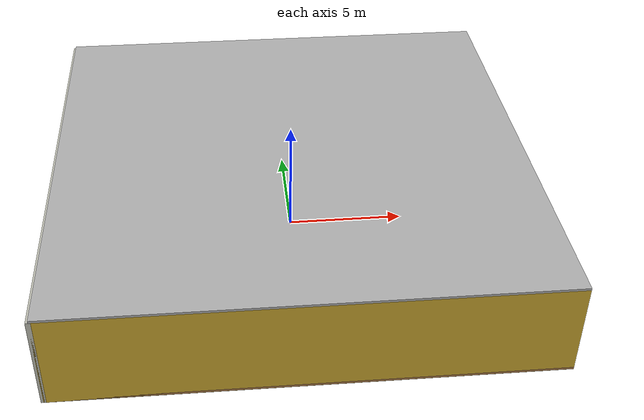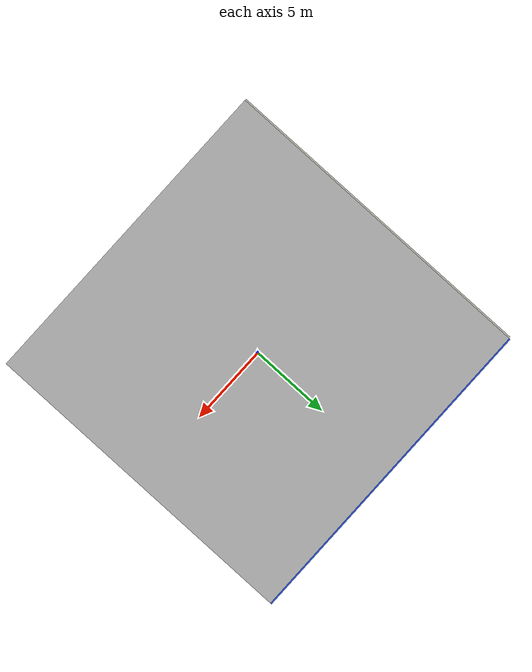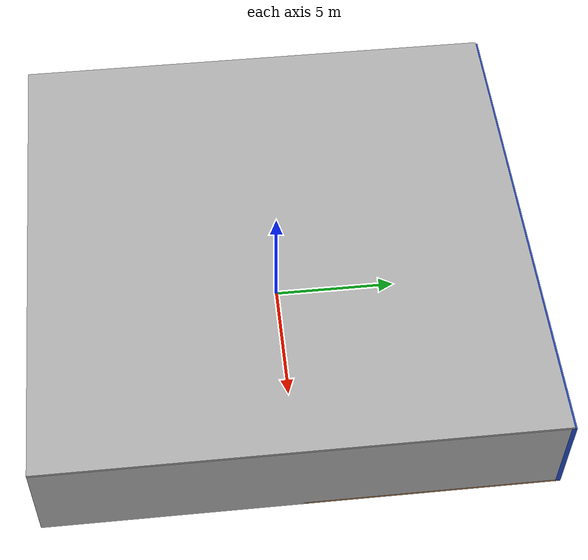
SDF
<sdf version="1.4">
 <world name="default">
  <physics type="ode">
   <max_step_size>0.001</max_step_size>
   <real_time_factor>1</real_time_factor>
   <real_time_update_rate>1000</real_time_update_rate>
   <gravity>0 0 -9.8</gravity>
  </physics>
  <scene><ambient>0.4 0.4 0.4 1</ambient><background>0.7 0.7 0.7 1</background><shadows>1</shadows></scene>
  <model name="Surrounding">
   <static>1</static>
   <link name="Ceiling">
    <collision name="Ceiling_Collision"><geometry><box><size>20 20 0.1</size></box></geometry></collision>
    <visual name="Ceiling_Visual">
     <geometry><box><size>20 20 0.1</size></box></geometry>
     <material>
      <script><uri>file://media/materials/scripts/gazebo.material</uri><name>Gazebo/Pioneer2Body</name></script>
     </material>
    </visual>
    <pose>0 0 4.05 0 0 0</pose>
   </link>
   <link name="Wall_South">
    <collision name="Wall_South_Collision">
     <geometry><box><size>20 0 4</size></box></geometry>
     <pose>0 0 2 0 -0 0</pose>
    </collision>
    <visual name="Wall_South_Visual">
     <pose>0 0 2 0 -0 0</pose>
     <geometry><box><size>20 0 4</size></box></geometry>
     <material>
      <script><uri>file://media/materials/scripts/gazebo.material</uri><name>Gazebo/Gold</name></script>
     </material>
    </visual>
    <velocity_decay><linear>0</linear><angular>0</angular></velocity_decay>
    <pose>0 -10 0 0 -0 0</pose>
   </link>
   <link name="Wall_East">
    <collision name="Wall_21_Collision">
     <geometry><box><size>20 0 4</size></box></geometry>
     <pose>0 0 2 0 -0 0</pose>
    </collision>
    <visual name="Wall_21_Visual">
     <pose>0 0 2 0 -0 0</pose>
     <geometry><box><size>20 0 4</size></box></geometry>
     <material>
      <script><uri>file://media/materials/scripts/gazebo.material</uri><name>Gazebo/JointAnchor</name></script>
     </material>
    </visual>
    <velocity_decay><linear>0</linear><angular>0</angular></velocity_decay>
    <pose>10 0 0 0 -0 1.5708</pose>
   </link>
   <link name="Wall_North">
    <collision name="Wall_22_Collision">
     <geometry><box><size>20 0.2 4</size></box></geometry>
     <pose>0 0 2 0 -0 0</pose>
    </collision>
    <visual name="Wall_22_Visual">
     <pose>0 0 2 0 -0 0</pose>
     <geometry><box><size>20 0.2 4</size></box></geometry>
     <material>
      <script><uri>file://media/materials/scripts/gazebo.material</uri><name>Gazebo/BlueLaser</name></script>
     </material>
    </visual>
    <velocity_decay><linear>0</linear><angular>0</angular></velocity_decay>
    <pose>0 10 0 0 -0 0</pose>
   </link>
   <link name="Wall_West">
    <collision name="Wall_23_Collision">
     <geometry><box><size>20 0.2 4</size></box></geometry>
     <pose>0 0 2 0 -0 0</pose>
    </collision>
    <visual name="Wall_23_Visual">
     <pose>0 0 2 0 -0 0</pose>
     <geometry><box><size>20 0.2 4</size></box></geometry>
     <material>
      <script><uri>file://media/materials/scripts/gazebo.material</uri><name>Gazebo/PaintedWall</name></script>
     </material>
    </visual>
    <velocity_decay><linear>0</linear><angular>0</angular></velocity_decay>
    <pose>-10 0 0 0 0 -1.5708</pose>
   </link>
   <link name="Ground_link">
    <collision name="collision">
     <pose>0 0 .05 0 -0 0</pose>
     <geometry><box><size>20 20 0.1</size></box></geometry>
    </collision>
    <visual name="visual">
     <pose>0 0 .05 0 -0 0</pose>
     <geometry><box><size>20 20 0.1</size></box></geometry>
     <material>
      <script><uri>file://media/materials/scripts/gazebo.material</uri><name>Gazebo/Wood</name></script>
     </material>
    </visual>
   </link>
   <static>1</static>
  </model>
  <spherical_coordinates>
   <surface_model>EARTH_WGS84</surface_model>
   <latitude_deg>0</latitude_deg>
   <longitude_deg>0</longitude_deg>
   <elevation>0</elevation>
   <heading_deg>0</heading_deg>
  </spherical_coordinates>
  <light name="lightball_0" type="diffuse">
   <diffuse>0.8 0.8 0.8 1</diffuse>
   <specular>0.2 0.2 0.2 1</specular>
   <attenuation>
    <range>100</range>
    <constant>0.7</constant>
    <linear>0.01</linear>
    <quadratic>0.001</quadratic>
   </attenuation>
   <direction>-0.5 0.1 -0.9</direction>
   <pose>-1.58880229417 6.33833617482 2.21721591089 0 0 0</pose>
  </light>
  <light name="lightball_1" type="diffuse">
   <diffuse>0.8 0.8 0.8 1</diffuse>
   <specular>0.2 0.2 0.2 1</specular>
   <attenuation>
    <range>100</range>
    <constant>0.7</constant>
    <linear>0.01</linear>
    <quadratic>0.001</quadratic>
   </attenuation>
   <direction>-0.5 0.1 -0.9</direction>
   <pose>-3.00871862616 1.63326713657 1.02452508506 0 0 0</pose>
  </light>
  <light name="lightball_2" type="diffuse">
   <diffuse>0.8 0.8 0.8 1</diffuse>
   <specular>0.2 0.2 0.2 1</specular>
   <attenuation>
    <range>100</range>
    <constant>0.7</constant>
    <linear>0.01</linear>
    <quadratic>0.001</quadratic>
   </attenuation>
   <direction>-0.5 0.1 -0.9</direction>
   <pose>2.85503226276 -3.51207916149 2.35763894617 0 0 0</pose>
  </light>
  <include><uri>model://cabinet</uri><pose>-7.01624161713 -4.09252540736 0 0 0 0.821963597584</pose></include>
  <include><uri>model://cabinet</uri><pose>-2.09964452048 0.723201327595 0 0 0 0.424924671814</pose></include>
  <include><uri>model://cabinet</uri><pose>1.59590013823 -4.17633109309 0 0 0 2.3227204803</pose></include>
 </world>
</sdf>

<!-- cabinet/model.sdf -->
<sdf version="1.5">
  <model name="cabinet">
    <static>true</static>
    <link name="cabinet_bottom_plate">
      <inertial>
        <pose>0 0 -1 0 0 0</pose>
        <inertia>
          <ixx>2.050000</ixx>
          <ixy>0</ixy>
          <ixz>0</ixz>
          <iyy>2.050000</iyy>
          <iyz>0</iyz>
          <izz>2.050000</izz>
        </inertia>
        <mass>25.000000</mass>
      </inertial>
      <collision name="cabinet_bottom_plate_geom">
        <pose>0 0 0.010000 0 0 0</pose>
        <geometry>
          <box>
            <size>0.450000 0.450000 0.020000</size>
          </box>
        </geometry>
      </collision>
      <visual name="cabinet_bottom_plate_geom_visual">
        <pose>0 0 0.010000 0 0 0</pose>
        <geometry>
          <box>
            <size>0.450000 0.450000 0.020000</size>
          </box>
        </geometry>
        <material>
          <script>
            <uri>model://media/materials/scripts/gazebo.material</uri>
            <name>Gazebo/Wood</name>
          </script>
        </material>
      </visual>
      <collision name="cabinet_bottom_plate_geom_cabinet_back_plate">
        <pose>0.235000 0 0.510000 0 0 0</pose>
        <geometry>
          <box>
            <size>0.020000 0.450000 1.020000</size>
          </box>
        </geometry>
      </collision>
      <visual name="cabinet_bottom_plate_geom_cabinet_back_plate_visual">
        <pose>0.235000 0 0.510000 0 0 0</pose>
        <geometry>
          <box>
            <size>0.020000 0.450000 1.020000</size>
          </box>
        </geometry>
        <material>
          <script>
            <uri>model://media/materials/scripts/gazebo.material</uri>
            <name>Gazebo/Wood</name>
          </script>
        </material>
      </visual>
      <collision name="cabinet_bottom_plate_geom_cabinet_left_plate">
        <pose>0 0.235000 0.510000 0 0 0</pose>
        <geometry>
          <box>
            <size>0.450000 0.020000 1.020000</size>
          </box>
        </geometry>
      </collision>
      <visual name="cabinet_bottom_plate_geom_cabinet_left_plate_visual">
        <pose>0 0.235000 0.510000 0 0 0</pose>
        <geometry>
          <box>
            <size>0.450000 0.020000 1.020000</size>
          </box>
        </geometry>
        <material>
          <script>
            <uri>model://media/materials/scripts/gazebo.material</uri>
            <name>Gazebo/Wood</name>
          </script>
        </material>
      </visual>
      <collision name="cabinet_bottom_plate_geom_cabinet_middle_plate">
        <pose>0 0 0.510000 0 0 0</pose>
        <geometry>
          <box>
            <size>0.450000 0.450000 0.020000</size>
          </box>
        </geometry>
      </collision>
      <visual name="cabinet_bottom_plate_geom_cabinet_middle_plate_visual">
        <pose>0 0 0.510000 0 0 0</pose>
        <geometry>
          <box>
            <size>0.450000 0.450000 0.020000</size>
          </box>
        </geometry>
        <material>
          <script>
            <uri>model://media/materials/scripts/gazebo.material</uri>
            <name>Gazebo/Wood</name>
          </script>
        </material>
      </visual>
      <collision name="cabinet_bottom_plate_geom_cabinet_right_plate">
        <pose>0 -0.235000 0.510000 0 0 0</pose>
        <geometry>
          <box>
            <size>0.450000 0.020000 1.020000</size>
          </box>
        </geometry>
      </collision>
      <visual name="cabinet_bottom_plate_geom_cabinet_right_plate_visual">
        <pose>0 -0.235000 0.510000 0 0 0</pose>
        <geometry>
          <box>
            <size>0.450000 0.020000 1.020000</size>
          </box>
        </geometry>
        <material>
          <script>
            <uri>model://media/materials/scripts/gazebo.material</uri>
            <name>Gazebo/Wood</name>
          </script>
        </material>
      </visual>
      <collision name="cabinet_bottom_plate_geom_cabinet_top_plate">
        <pose>0 0 1.010000 0 0 0</pose>
        <geometry>
          <box>
            <size>0.450000 0.450000 0.020000</size>
          </box>
        </geometry>
      </collision>
      <visual name="cabinet_bottom_plate_geom_cabinet_top_plate_visual">
        <pose>0 0 1.010000 0 0 0</pose>
        <geometry>
          <box>
            <size>0.450000 0.450000 0.020000</size>
          </box>
        </geometry>
        <material>
          <script>
            <uri>model://media/materials/scripts/gazebo.material</uri>
            <name>Gazebo/Wood</name>
          </script>
        </material>
      </visual>
    </link>
  </model>
</sdf>
